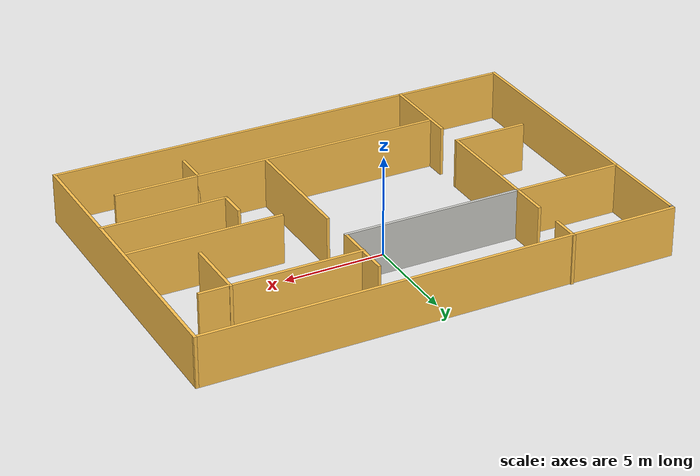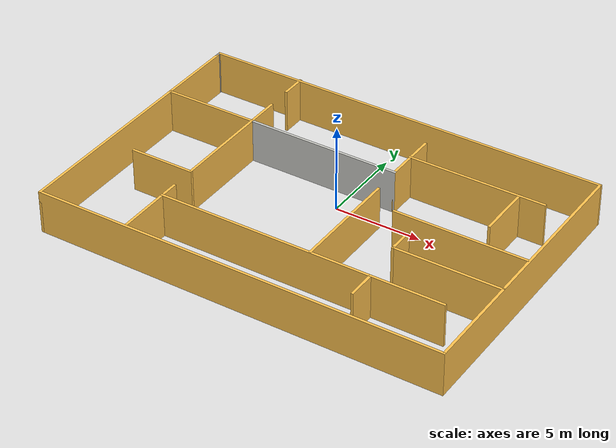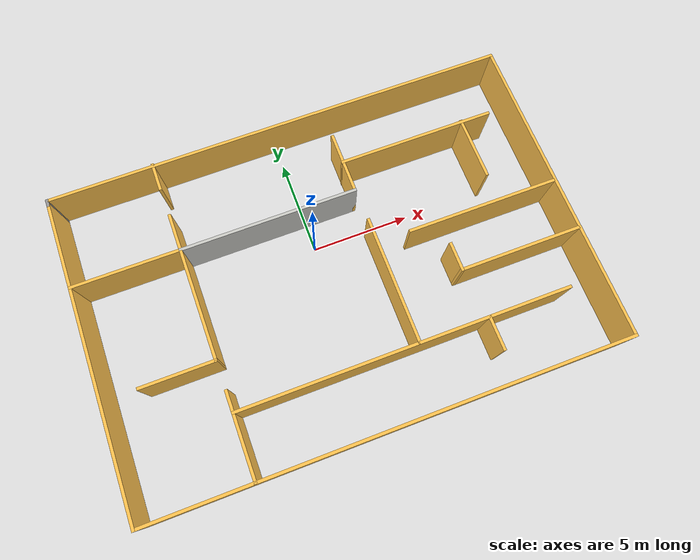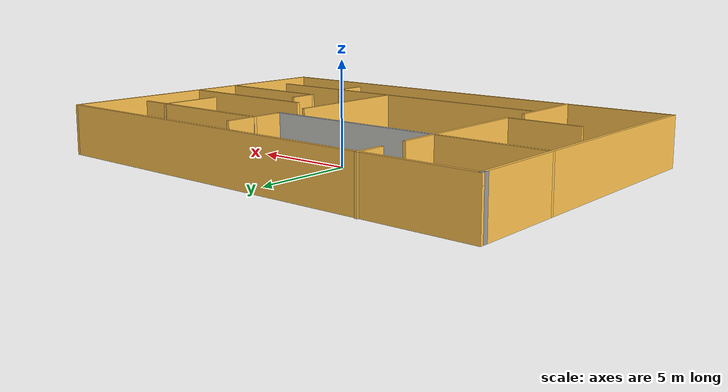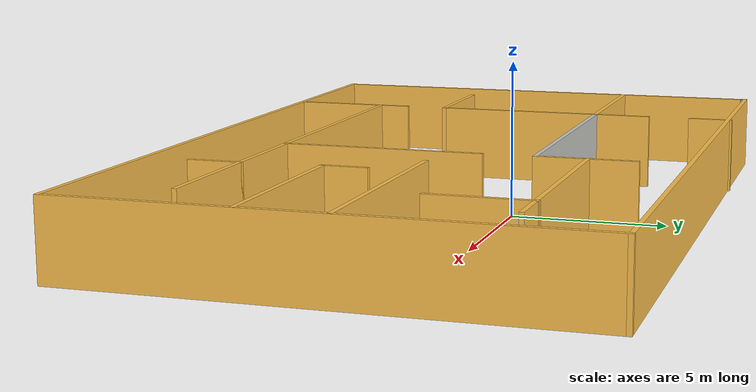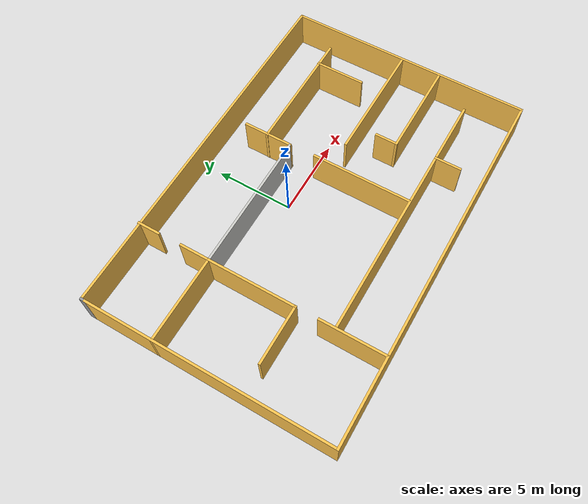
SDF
<?xml version='1.0'?>
<sdf version='1.7'>
  <model name='cool_rooms'>
    <pose>0.235751 -1.82929 0 0 -0 0</pose>
    <link name='Wall_22'>
      <collision name='Wall_22_Collision'>
        <geometry>
          <box>
            <size>15.75 0.15 2.5</size>
          </box>
        </geometry>
        <pose>0 0 1.25 0 -0 0</pose>
      </collision>
      <visual name='Wall_22_Visual'>
        <pose>0 0 1.25 0 -0 0</pose>
        <geometry>
          <box>
            <size>15.75 0.15 2.5</size>
          </box>
        </geometry>
        <material>
          <script>
            <uri>file://media/materials/scripts/gazebo.material</uri>
            <name>Gazebo/Grey</name>
          </script>
          <ambient>1 0.764706 0.305882 1</ambient>
        </material>
        <meta>
          <layer>0</layer>
        </meta>
      </visual>
      <pose>-11.8 -0.1587 0 0 -0 -1.5708</pose>
    </link>
    <link name='Wall_23'>
      <collision name='Wall_23_Collision'>
        <geometry>
          <box>
            <size>23.75 0.15 2.5</size>
          </box>
        </geometry>
        <pose>0 0 1.25 0 -0 0</pose>
      </collision>
      <visual name='Wall_23_Visual'>
        <pose>0 0 1.25 0 -0 0</pose>
        <geometry>
          <box>
            <size>23.75 0.15 2.5</size>
          </box>
        </geometry>
        <material>
          <script>
            <uri>file://media/materials/scripts/gazebo.material</uri>
            <name>Gazebo/Grey</name>
          </script>
          <ambient>1 0.764706 0.305882 1</ambient>
        </material>
        <meta>
          <layer>0</layer>
        </meta>
      </visual>
      <pose>0 -7.9587 0 0 -0 0</pose>
    </link>
    <link name='Wall_24'>
      <collision name='Wall_24_Collision'>
        <geometry>
          <box>
            <size>16 0.15 2.5</size>
          </box>
        </geometry>
        <pose>0 0 1.25 0 -0 0</pose>
      </collision>
      <visual name='Wall_24_Visual'>
        <pose>0 0 1.25 0 -0 0</pose>
        <geometry>
          <box>
            <size>16 0.15 2.5</size>
          </box>
        </geometry>
        <material>
          <script>
            <uri>file://media/materials/scripts/gazebo.material</uri>
            <name>Gazebo/Grey</name>
          </script>
          <ambient>1 0.764706 0.305882 1</ambient>
        </material>
        <meta>
          <layer>0</layer>
        </meta>
      </visual>
      <pose>11.8 -0.0337 0 0 -0 1.5708</pose>
    </link>
    <link name='Wall_25'>
      <collision name='Wall_25_Collision'>
        <geometry>
          <box>
            <size>23.75 0.15 2.5</size>
          </box>
        </geometry>
        <pose>0 0 1.25 0 -0 0</pose>
      </collision>
      <visual name='Wall_25_Visual'>
        <pose>0 0 1.25 0 -0 0</pose>
        <geometry>
          <box>
            <size>23.75 0.15 2.5</size>
          </box>
        </geometry>
        <material>
          <script>
            <uri>file://media/materials/scripts/gazebo.material</uri>
            <name>Gazebo/Grey</name>
          </script>
          <ambient>1 0.764706 0.305882 1</ambient>
        </material>
        <meta>
          <layer>0</layer>
        </meta>
      </visual>
      <pose>0 7.8913 0 0 -0 3.14159</pose>
    </link>
    <link name='Wall_26'>
      <collision name='Wall_26_Collision'>
        <geometry>
          <box>
            <size>0.4 0.15 2.5</size>
          </box>
        </geometry>
        <pose>0 0 1.25 0 -0 0</pose>
      </collision>
      <visual name='Wall_26_Visual'>
        <pose>0 0 1.25 0 -0 0</pose>
        <geometry>
          <box>
            <size>0.4 0.15 2.5</size>
          </box>
        </geometry>
        <material>
          <script>
            <uri>file://media/materials/scripts/gazebo.material</uri>
            <name>Gazebo/Grey</name>
          </script>
          <ambient>1 1 1 1</ambient>
        </material>
        <meta>
          <layer>0</layer>
        </meta>
      </visual>
      <pose>-11.8 7.7663 0 0 -0 -1.5708</pose>
    </link>
    <link name='Wall_28'>
      <collision name='Wall_28_Collision'>
        <geometry>
          <box>
            <size>5.5 0.15 2.5</size>
          </box>
        </geometry>
        <pose>0 0 1.25 0 -0 0</pose>
      </collision>
      <visual name='Wall_28_Visual'>
        <pose>0 0 1.25 0 -0 0</pose>
        <geometry>
          <box>
            <size>5.5 0.15 2.5</size>
          </box>
        </geometry>
        <material>
          <script>
            <uri>file://media/materials/scripts/gazebo.material</uri>
            <name>Gazebo/Grey</name>
          </script>
          <ambient>1 0.764706 0.305882 1</ambient>
        </material>
        <meta>
          <layer>0</layer>
        </meta>
      </visual>
      <pose>-9.125 3.22415 0 0 -0 0</pose>
    </link>
    <link name='Wall_31'>
      <collision name='Wall_31_Collision'>
        <geometry>
          <box>
            <size>2 0.15 2.5</size>
          </box>
        </geometry>
        <pose>0 0 1.25 0 -0 0</pose>
      </collision>
      <visual name='Wall_31_Visual'>
        <pose>0 0 1.25 0 -0 0</pose>
        <geometry>
          <box>
            <size>2 0.15 2.5</size>
          </box>
        </geometry>
        <material>
          <script>
            <uri>file://media/materials/scripts/gazebo.material</uri>
            <name>Gazebo/Grey</name>
          </script>
          <ambient>1 0.764706 0.305882 1</ambient>
        </material>
        <meta>
          <layer>0</layer>
        </meta>
      </visual>
      <pose>-6.45 4.14915 0 0 -0 1.5708</pose>
    </link>
    <link name='Wall_33'>
      <collision name='Wall_33_Collision'>
        <geometry>
          <box>
            <size>1.5 0.15 2.5</size>
          </box>
        </geometry>
        <pose>0 0 1.25 0 -0 0</pose>
      </collision>
      <visual name='Wall_33_Visual'>
        <pose>0 0 1.25 0 -0 0</pose>
        <geometry>
          <box>
            <size>1.5 0.15 2.5</size>
          </box>
        </geometry>
        <material>
          <script>
            <uri>file://media/materials/scripts/gazebo.material</uri>
            <name>Gazebo/Grey</name>
          </script>
          <ambient>1 0.764706 0.305882 1</ambient>
        </material>
        <meta>
          <layer>0</layer>
        </meta>
      </visual>
      <pose>-6.48355 7.2837 0 0 -0 -1.5708</pose>
    </link>
    <link name='Wall_35'>
      <collision name='Wall_35_Collision'>
        <geometry>
          <box>
            <size>5.75 0.15 2.5</size>
          </box>
        </geometry>
        <pose>0 0 1.25 0 -0 0</pose>
      </collision>
      <visual name='Wall_35_Visual'>
        <pose>0 0 1.25 0 -0 0</pose>
        <geometry>
          <box>
            <size>5.75 0.15 2.5</size>
          </box>
        </geometry>
        <material>
          <script>
            <uri>file://media/materials/scripts/gazebo.material</uri>
            <name>Gazebo/Grey</name>
          </script>
          <ambient>1 0.764706 0.305882 1</ambient>
        </material>
        <meta>
          <layer>0</layer>
        </meta>
      </visual>
      <pose>-6.45 0.42415 0 0 -0 -1.5708</pose>
    </link>
    <link name='Wall_36'>
      <collision name='Wall_36_Collision'>
        <geometry>
          <box>
            <size>3.75 0.15 2.5</size>
          </box>
        </geometry>
        <pose>0 0 1.25 0 -0 0</pose>
      </collision>
      <visual name='Wall_36_Visual'>
        <pose>0 0 1.25 0 -0 0</pose>
        <geometry>
          <box>
            <size>3.75 0.15 2.5</size>
          </box>
        </geometry>
        <material>
          <script>
            <uri>file://media/materials/scripts/gazebo.material</uri>
            <name>Gazebo/Grey</name>
          </script>
          <ambient>1 0.764706 0.305882 1</ambient>
        </material>
        <meta>
          <layer>0</layer>
        </meta>
      </visual>
      <pose>-8.25 -2.37585 0 0 -0 3.14159</pose>
    </link>
    <link name='Wall_38'>
      <collision name='Wall_38_Collision'>
        <geometry>
          <box>
            <size>4.25 0.15 2.5</size>
          </box>
        </geometry>
        <pose>0 0 1.25 0 -0 0</pose>
      </collision>
      <visual name='Wall_38_Visual'>
        <pose>0 0 1.25 0 -0 0</pose>
        <geometry>
          <box>
            <size>4.25 0.15 2.5</size>
          </box>
        </geometry>
        <material>
          <script>
            <uri>file://media/materials/scripts/gazebo.material</uri>
            <name>Gazebo/Grey</name>
          </script>
          <ambient>1 0.764706 0.305882 1</ambient>
        </material>
        <meta>
          <layer>0</layer>
        </meta>
      </visual>
      <pose>-6.43065 -5.88775 0 0 -0 1.5708</pose>
    </link>
    <link name='Wall_40'>
      <collision name='Wall_40_Collision'>
        <geometry>
          <box>
            <size>9 0.15 2.5</size>
          </box>
        </geometry>
        <pose>0 0 1.25 0 -0 0</pose>
      </collision>
      <visual name='Wall_40_Visual'>
        <pose>0 0 1.25 0 -0 0</pose>
        <geometry>
          <box>
            <size>9 0.15 2.5</size>
          </box>
        </geometry>
        <material>
          <script>
            <uri>file://media/materials/scripts/gazebo.material</uri>
            <name>Gazebo/CeilingTiled</name>
          </script>
          <ambient>1 0.764706 0.305882 1</ambient>
        </material>
        <meta>
          <layer>0</layer>
        </meta>
      </visual>
      <pose>-2.025 3.22415 0 0 -0 0</pose>
    </link>
    <link name='Wall_41'>
      <collision name='Wall_41_Collision'>
        <geometry>
          <box>
            <size>3.25 0.15 2.5</size>
          </box>
        </geometry>
        <pose>0 0 1.25 0 -0 0</pose>
      </collision>
      <visual name='Wall_41_Visual'>
        <pose>0 0 1.25 0 -0 0</pose>
        <geometry>
          <box>
            <size>3.25 0.15 2.5</size>
          </box>
        </geometry>
        <material>
          <script>
            <uri>file://media/materials/scripts/gazebo.material</uri>
            <name>Gazebo/Grey</name>
          </script>
          <ambient>1 0.764706 0.305882 1</ambient>
        </material>
        <meta>
          <layer>0</layer>
        </meta>
      </visual>
      <pose>2.4 4.77415 0 0 -0 1.5708</pose>
    </link>
    <link name='Wall_43'>
      <collision name='Wall_43_Collision'>
        <geometry>
          <box>
            <size>12.5 0.15 2.5</size>
          </box>
        </geometry>
        <pose>0 0 1.25 0 -0 0</pose>
      </collision>
      <visual name='Wall_43_Visual'>
        <pose>0 0 1.25 0 -0 0</pose>
        <geometry>
          <box>
            <size>12.5 0.15 2.5</size>
          </box>
        </geometry>
        <material>
          <script>
            <uri>file://media/materials/scripts/gazebo.material</uri>
            <name>Gazebo/Grey</name>
          </script>
          <ambient>1 0.764706 0.305882 1</ambient>
        </material>
        <meta>
          <layer>0</layer>
        </meta>
      </visual>
      <pose>-0.25565 -4.8431 0 0 -0 0</pose>
    </link>
    <link name='Wall_44'>
      <collision name='Wall_44_Collision'>
        <geometry>
          <box>
            <size>1.75 0.15 2.5</size>
          </box>
        </geometry>
        <pose>0 0 1.25 0 -0 0</pose>
      </collision>
      <visual name='Wall_44_Visual'>
        <pose>0 0 1.25 0 -0 0</pose>
        <geometry>
          <box>
            <size>1.75 0.15 2.5</size>
          </box>
        </geometry>
        <material>
          <script>
            <uri>file://media/materials/scripts/gazebo.material</uri>
            <name>Gazebo/Grey</name>
          </script>
          <ambient>1 0.764706 0.305882 1</ambient>
        </material>
        <meta>
          <layer>0</layer>
        </meta>
      </visual>
      <pose>5.91935 -5.6431 0 0 -0 -1.5708</pose>
    </link>
    <link name='Wall_46'>
      <collision name='Wall_46_Collision'>
        <geometry>
          <box>
            <size>4.25 0.15 2.5</size>
          </box>
        </geometry>
        <pose>0 0 1.25 0 -0 0</pose>
      </collision>
      <visual name='Wall_46_Visual'>
        <pose>0 0 1.25 0 -0 0</pose>
        <geometry>
          <box>
            <size>4.25 0.15 2.5</size>
          </box>
        </geometry>
        <material>
          <script>
            <uri>file://media/materials/scripts/gazebo.material</uri>
            <name>Gazebo/Grey</name>
          </script>
          <ambient>1 0.764706 0.305882 1</ambient>
        </material>
        <meta>
          <layer>0</layer>
        </meta>
      </visual>
      <pose>7.96935 -4.8431 0 0 -0 0</pose>
    </link>
    <link name='Wall_49'>
      <collision name='Wall_49_Collision'>
        <geometry>
          <box>
            <size>6.5 0.15 2.5</size>
          </box>
        </geometry>
        <pose>0 0 1.25 0 -0 0</pose>
      </collision>
      <visual name='Wall_49_Visual'>
        <pose>0 0 1.25 0 -0 0</pose>
        <geometry>
          <box>
            <size>6.5 0.15 2.5</size>
          </box>
        </geometry>
        <material>
          <script>
            <uri>file://media/materials/scripts/gazebo.material</uri>
            <name>Gazebo/Grey</name>
          </script>
          <ambient>1 0.764706 0.305882 1</ambient>
        </material>
        <meta>
          <layer>0</layer>
        </meta>
      </visual>
      <pose>2.45655 -1.64165 0 0 -0 1.5708</pose>
    </link>
    <link name='Wall_52'>
      <collision name='Wall_52_Collision'>
        <geometry>
          <box>
            <size>7.75 0.15 2.5</size>
          </box>
        </geometry>
        <pose>0 0 1.25 0 -0 0</pose>
      </collision>
      <visual name='Wall_52_Visual'>
        <pose>0 0 1.25 0 -0 0</pose>
        <geometry>
          <box>
            <size>7.75 0.15 2.5</size>
          </box>
        </geometry>
        <material>
          <script>
            <uri>file://media/materials/scripts/gazebo.material</uri>
            <name>Gazebo/Grey</name>
          </script>
          <ambient>1 0.764706 0.305882 1</ambient>
        </material>
        <meta>
          <layer>0</layer>
        </meta>
      </visual>
      <pose>7.9405 0.31465 0 0 -0 3.14159</pose>
    </link>
    <link name='Wall_55'>
      <collision name='Wall_55_Collision'>
        <geometry>
          <box>
            <size>8 0.15 2.5</size>
          </box>
        </geometry>
        <pose>0 0 1.25 0 -0 0</pose>
      </collision>
      <visual name='Wall_55_Visual'>
        <pose>0 0 1.25 0 -0 0</pose>
        <geometry>
          <box>
            <size>8 0.15 2.5</size>
          </box>
        </geometry>
        <material>
          <script>
            <uri>file://media/materials/scripts/gazebo.material</uri>
            <name>Gazebo/Grey</name>
          </script>
          <ambient>1 0.764706 0.305882 1</ambient>
        </material>
        <meta>
          <layer>0</layer>
        </meta>
      </visual>
      <pose>6.3022 4.8376 0 0 -0 0</pose>
    </link>
    <link name='Wall_57'>
      <collision name='Wall_57_Collision'>
        <geometry>
          <box>
            <size>3.25 0.15 2.5</size>
          </box>
        </geometry>
        <pose>0 0 1.25 0 -0 0</pose>
      </collision>
      <visual name='Wall_57_Visual'>
        <pose>0 0 1.25 0 -0 0</pose>
        <geometry>
          <box>
            <size>3.25 0.15 2.5</size>
          </box>
        </geometry>
        <material>
          <script>
            <uri>file://media/materials/scripts/gazebo.material</uri>
            <name>Gazebo/Grey</name>
          </script>
          <ambient>1 0.764706 0.305882 1</ambient>
        </material>
        <meta>
          <layer>0</layer>
        </meta>
      </visual>
      <pose>8.7781 3.31405 0 0 -0 -1.5708</pose>
    </link>
    <link name='Wall_59'>
      <collision name='Wall_59_Collision'>
        <geometry>
          <box>
            <size>6.25 0.15 2.5</size>
          </box>
        </geometry>
        <pose>0 0 1.25 0 -0 0</pose>
      </collision>
      <visual name='Wall_59_Visual'>
        <pose>0 0 1.25 0 -0 0</pose>
        <geometry>
          <box>
            <size>6.25 0.15 2.5</size>
          </box>
        </geometry>
        <material>
          <script>
            <uri>file://media/materials/scripts/gazebo.material</uri>
            <name>Gazebo/Grey</name>
          </script>
          <ambient>1 0.764706 0.305882 1</ambient>
        </material>
        <meta>
          <layer>0</layer>
        </meta>
      </visual>
      <pose>8.71695 -2.33035 0 0 -0 3.14159</pose>
    </link>
    <link name='Wall_60'>
      <collision name='Wall_60_Collision'>
        <geometry>
          <box>
            <size>1.5 0.15 2.5</size>
          </box>
        </geometry>
        <pose>0 0 1.25 0 -0 0</pose>
      </collision>
      <visual name='Wall_60_Visual'>
        <pose>0 0 1.25 0 -0 0</pose>
        <geometry>
          <box>
            <size>1.5 0.15 2.5</size>
          </box>
        </geometry>
        <material>
          <script>
            <uri>file://media/materials/scripts/gazebo.material</uri>
            <name>Gazebo/Grey</name>
          </script>
          <ambient>1 0.764706 0.305882 1</ambient>
        </material>
        <meta>
          <layer>0</layer>
        </meta>
      </visual>
      <pose>5.66695 -1.65535 0 0 -0 1.5708</pose>
    </link>
    <static>1</static>
  </model>
</sdf>
